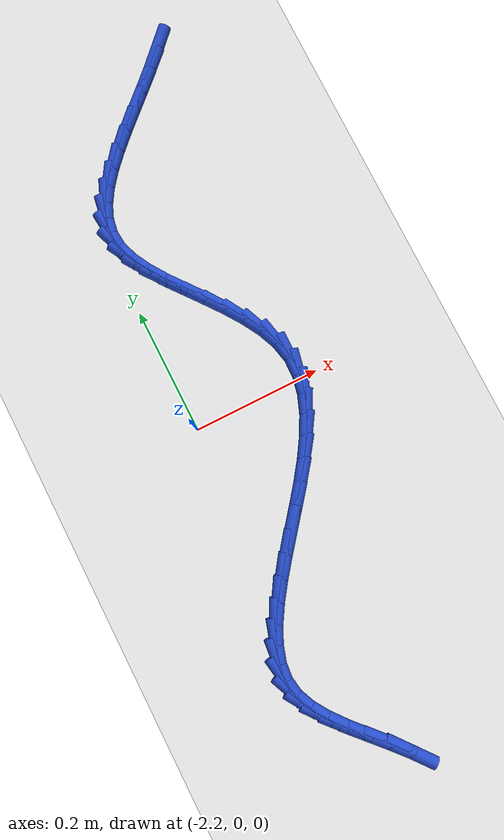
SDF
<sdf version="1.6">
 <world name="default">
  <model name="ground_plane">
   <static>1</static>
   <link name="link">
    <collision name="collision">
     <geometry><plane><normal>0 0 1</normal><size>100 100</size></plane></geometry>
     <surface><friction><ode><mu>100</mu><mu2>50</mu2></ode></friction></surface>
    </collision>
    <visual name="visual">
     <cast_shadows>0</cast_shadows>
     <geometry><plane><normal>0 0 1</normal><size>100 100</size></plane></geometry>
     <material>
      <script><uri>file://media/materials/scripts/gazebo.material</uri><name>Gazebo/WhiteGlow</name></script>
     </material>
    </visual>
   </link>
  </model>
  <model name="line">
   <link name="link_109">
    <pose>-1.9909394929007949 0.5653496473522089 0.01 0 1.57 0.7922528566167634</pose>
    <collision name="collision">
     <geometry><cylinder><radius>0.01</radius><length>0.08</length></cylinder></geometry>
    </collision>
    <visual name="visual">
     <material>
      <script><name>Gazebo/Blue</name><uri>file://media/materials/scripts/gazebo.material</uri></script>
     </material>
     <geometry><cylinder><radius>0.01</radius><length>0.08</length></cylinder></geometry>
    </visual>
   </link>
   <link name="link_110">
    <pose>-2.016343457486458 0.5395950006884088 0.01 0 1.57 0.7614162719492371</pose>
    <collision name="collision">
     <geometry><cylinder><radius>0.01</radius><length>0.08</length></cylinder></geometry>
    </collision>
    <visual name="visual">
     <material>
      <script><name>Gazebo/Blue</name><uri>file://media/materials/scripts/gazebo.material</uri></script>
     </material>
     <geometry><cylinder><radius>0.01</radius><length>0.08</length></cylinder></geometry>
    </visual>
   </link>
   <link name="link_111">
    <pose>-2.0424245737919593 0.5147357646395057 0.01 0 1.57 0.7480867261845477</pose>
    <collision name="collision">
     <geometry><cylinder><radius>0.01</radius><length>0.08</length></cylinder></geometry>
    </collision>
    <visual name="visual">
     <material>
      <script><name>Gazebo/Blue</name><uri>file://media/materials/scripts/gazebo.material</uri></script>
     </material>
     <geometry><cylinder><radius>0.01</radius><length>0.08</length></cylinder></geometry>
    </visual>
   </link>
   <link name="link_112">
    <pose>-2.068421527474488 0.4906098360571725 0.01 0 1.57 0.7526265500591633</pose>
    <collision name="collision">
     <geometry><cylinder><radius>0.01</radius><length>0.08</length></cylinder></geometry>
    </collision>
    <visual name="visual">
     <material>
      <script><name>Gazebo/Blue</name><uri>file://media/materials/scripts/gazebo.material</uri></script>
     </material>
     <geometry><cylinder><radius>0.01</radius><length>0.08</length></cylinder></geometry>
    </visual>
   </link>
   <link name="link_113">
    <pose>-2.093573004191239 0.4670551117930837 0.01 0 1.57 0.7768513662166322</pose>
    <collision name="collision">
     <geometry><cylinder><radius>0.01</radius><length>0.08</length></cylinder></geometry>
    </collision>
    <visual name="visual">
     <material>
      <script><name>Gazebo/Blue</name><uri>file://media/materials/scripts/gazebo.material</uri></script>
     </material>
     <geometry><cylinder><radius>0.01</radius><length>0.08</length></cylinder></geometry>
    </visual>
   </link>
   <link name="link_114">
    <pose>-2.1171176895994033 0.44390948869891295 0.01 0 1.57 0.8244489150094697</pose>
    <collision name="collision">
     <geometry><cylinder><radius>0.01</radius><length>0.08</length></cylinder></geometry>
    </collision>
    <visual name="visual">
     <material>
      <script><name>Gazebo/Blue</name><uri>file://media/materials/scripts/gazebo.material</uri></script>
     </material>
     <geometry><cylinder><radius>0.01</radius><length>0.08</length></cylinder></geometry>
    </visual>
   </link>
   <link name="link_115">
    <pose>-2.138294269356173 0.42101086362633405 0.01 0 1.57 0.9015269116944556</pose>
    <collision name="collision">
     <geometry><cylinder><radius>0.01</radius><length>0.08</length></cylinder></geometry>
    </collision>
    <visual name="visual">
     <material>
      <script><name>Gazebo/Blue</name><uri>file://media/materials/scripts/gazebo.material</uri></script>
     </material>
     <geometry><cylinder><radius>0.01</radius><length>0.08</length></cylinder></geometry>
    </visual>
   </link>
   <link name="link_116">
    <pose>-2.1563414291187404 0.3981971334270214 0.01 0 1.57 1.0169360201142332</pose>
    <collision name="collision">
     <geometry><cylinder><radius>0.01</radius><length>0.08</length></cylinder></geometry>
    </collision>
    <visual name="visual">
     <material>
      <script><name>Gazebo/Blue</name><uri>file://media/materials/scripts/gazebo.material</uri></script>
     </material>
     <geometry><cylinder><radius>0.01</radius><length>0.08</length></cylinder></geometry>
    </visual>
   </link>
   <link name="link_117">
    <pose>-2.1704978545442972 0.3753061949526487 0.01 0 1.57 1.180923047749896</pose>
    <collision name="collision">
     <geometry><cylinder><radius>0.01</radius><length>0.08</length></cylinder></geometry>
    </collision>
    <visual name="visual">
     <material>
      <script><name>Gazebo/Blue</name><uri>file://media/materials/scripts/gazebo.material</uri></script>
     </material>
     <geometry><cylinder><radius>0.01</radius><length>0.08</length></cylinder></geometry>
    </visual>
   </link>
   <link name="link_118">
    <pose>-2.1800022312900356 0.3521759450548894 0.01 0 1.57 1.398665309087676</pose>
    <collision name="collision">
     <geometry><cylinder><radius>0.01</radius><length>0.08</length></cylinder></geometry>
    </collision>
    <visual name="visual">
     <material>
      <script><name>Gazebo/Blue</name><uri>file://media/materials/scripts/gazebo.material</uri></script>
     </material>
     <geometry><cylinder><radius>0.01</radius><length>0.08</length></cylinder></geometry>
    </visual>
   </link>
   <link name="link_119">
    <pose>-2.184093245013148 0.3286442805854182 0.01 0 1.57 -1.484602197525013</pose>
    <collision name="collision">
     <geometry><cylinder><radius>0.01</radius><length>0.08</length></cylinder></geometry>
    </collision>
    <visual name="visual">
     <material>
      <script><name>Gazebo/Blue</name><uri>file://media/materials/scripts/gazebo.material</uri></script>
     </material>
     <geometry><cylinder><radius>0.01</radius><length>0.08</length></cylinder></geometry>
    </visual>
   </link>
   <link name="link_120">
    <pose>-2.182011237393987 0.3045492634498365 0.01 0 1.57 -1.2417170835180595</pose>
    <collision name="collision">
     <geometry><cylinder><radius>0.01</radius><length>0.08</length></cylinder></geometry>
    </collision>
    <visual name="visual">
     <material>
      <script><name>Gazebo/Blue</name><uri>file://media/materials/scripts/gazebo.material</uri></script>
     </material>
     <geometry><cylinder><radius>0.01</radius><length>0.08</length></cylinder></geometry>
    </visual>
   </link>
   <link name="link_121">
    <pose>-2.1735541708751853 0.2797845329751328 0.01 0 1.57 -1.0771766466892587</pose>
    <collision name="collision">
     <geometry><cylinder><radius>0.01</radius><length>0.08</length></cylinder></geometry>
    </collision>
    <visual name="visual">
     <material>
      <script><name>Gazebo/Blue</name><uri>file://media/materials/scripts/gazebo.material</uri></script>
     </material>
     <geometry><cylinder><radius>0.01</radius><length>0.08</length></cylinder></geometry>
    </visual>
   </link>
   <link name="link_122">
    <pose>-2.1598852391244616 0.25437979951760387 0.01 0 1.57 -0.977941074474532</pose>
    <collision name="collision">
     <geometry><cylinder><radius>0.01</radius><length>0.08</length></cylinder></geometry>
    </collision>
    <visual name="visual">
     <material>
      <script><name>Gazebo/Blue</name><uri>file://media/materials/scripts/gazebo.material</uri></script>
     </material>
     <geometry><cylinder><radius>0.01</radius><length>0.08</length></cylinder></geometry>
    </visual>
   </link>
   <link name="link_123">
    <pose>-2.1423727163872313 0.22838521357935115 0.01 0 1.57 -0.925197131033677</pose>
    <collision name="collision">
     <geometry><cylinder><radius>0.01</radius><length>0.08</length></cylinder></geometry>
    </collision>
    <visual name="visual">
     <material>
      <script><name>Gazebo/Blue</name><uri>file://media/materials/scripts/gazebo.material</uri></script>
     </material>
     <geometry><cylinder><radius>0.01</radius><length>0.08</length></cylinder></geometry>
    </visual>
   </link>
   <link name="link_124">
    <pose>-2.1223848769089106 0.2018509256624773 0.01 0 1.57 -0.9079954227318501</pose>
    <collision name="collision">
     <geometry><cylinder><radius>0.01</radius><length>0.08</length></cylinder></geometry>
    </collision>
    <visual name="visual">
     <material>
      <script><name>Gazebo/Blue</name><uri>file://media/materials/scripts/gazebo.material</uri></script>
     </material>
     <geometry><cylinder><radius>0.01</radius><length>0.08</length></cylinder></geometry>
    </visual>
   </link>
   <link name="link_125">
    <pose>-2.101289994934917 0.1748270862690839 0.01 0 1.57 -0.921813066096842</pose>
    <collision name="collision">
     <geometry><cylinder><radius>0.01</radius><length>0.08</length></cylinder></geometry>
    </collision>
    <visual name="visual">
     <material>
      <script><name>Gazebo/Blue</name><uri>file://media/materials/scripts/gazebo.material</uri></script>
     </material>
     <geometry><cylinder><radius>0.01</radius><length>0.08</length></cylinder></geometry>
    </visual>
   </link>
   <link name="link_126">
    <pose>-2.0804563447106643 0.1473638459012723 0.01 0 1.57 -0.9671557646690695</pose>
    <collision name="collision">
     <geometry><cylinder><radius>0.01</radius><length>0.08</length></cylinder></geometry>
    </collision>
    <visual name="visual">
     <material>
      <script><name>Gazebo/Blue</name><uri>file://media/materials/scripts/gazebo.material</uri></script>
     </material>
     <geometry><cylinder><radius>0.01</radius><length>0.08</length></cylinder></geometry>
    </visual>
   </link>
   <link name="link_127">
    <pose>-2.06125220048157 0.11951135506114521 0.01 0 1.57 -1.049063372015708</pose>
    <collision name="collision">
     <geometry><cylinder><radius>0.01</radius><length>0.08</length></cylinder></geometry>
    </collision>
    <visual name="visual">
     <material>
      <script><name>Gazebo/Blue</name><uri>file://media/materials/scripts/gazebo.material</uri></script>
     </material>
     <geometry><cylinder><radius>0.01</radius><length>0.08</length></cylinder></geometry>
    </visual>
   </link>
   <link name="link_128">
    <pose>-2.04504583649305 0.09131976425080417 0.01 0 1.57 -1.1768007500563307</pose>
    <collision name="collision">
     <geometry><cylinder><radius>0.01</radius><length>0.08</length></cylinder></geometry>
    </collision>
    <visual name="visual">
     <material>
      <script><name>Gazebo/Blue</name><uri>file://media/materials/scripts/gazebo.material</uri></script>
     </material>
     <geometry><cylinder><radius>0.01</radius><length>0.08</length></cylinder></geometry>
    </visual>
   </link>
   <link name="link_129">
    <pose>-2.03320552699052 0.0628392239723509 0.01 0 1.57 -1.3612449548500862</pose>
    <collision name="collision">
     <geometry><cylinder><radius>0.01</radius><length>0.08</length></cylinder></geometry>
    </collision>
    <visual name="visual">
     <material>
      <script><name>Gazebo/Blue</name><uri>file://media/materials/scripts/gazebo.material</uri></script>
     </material>
     <geometry><cylinder><radius>0.01</radius><length>0.08</length></cylinder></geometry>
    </visual>
   </link>
   <link name="link_130">
    <pose>-2.0270976872509836 0.03411989452586436 0.01 0 1.57 1.557016087091048</pose>
    <collision name="collision">
     <geometry><cylinder><radius>0.01</radius><length>0.08</length></cylinder></geometry>
    </collision>
    <visual name="visual">
     <material>
      <script><name>Gazebo/Blue</name><uri>file://media/materials/scripts/gazebo.material</uri></script>
     </material>
     <geometry><cylinder><radius>0.01</radius><length>0.08</length></cylinder></geometry>
    </visual>
   </link>
   <link name="link_131">
    <pose>-2.027496028011892 0.0052150601512527045 0.01 0 1.57 1.3590095523675543</pose>
    <collision name="collision">
     <geometry><cylinder><radius>0.01</radius><length>0.08</length></cylinder></geometry>
    </collision>
    <visual name="visual">
     <material>
      <script><name>Gazebo/Blue</name><uri>file://media/materials/scripts/gazebo.material</uri></script>
     </material>
     <geometry><cylinder><radius>0.01</radius><length>0.08</length></cylinder></geometry>
    </visual>
   </link>
   <link name="link_132">
    <pose>-2.0337376893171983 -0.023814423246256367 0.01 0 1.57 1.2030407065681186</pose>
    <collision name="collision">
     <geometry><cylinder><radius>0.01</radius><length>0.08</length></cylinder></geometry>
    </collision>
    <visual name="visual">
     <material>
      <script><name>Gazebo/Blue</name><uri>file://media/materials/scripts/gazebo.material</uri></script>
     </material>
     <geometry><cylinder><radius>0.01</radius><length>0.08</length></cylinder></geometry>
    </visual>
   </link>
   <link name="link_133">
    <pose>-2.0449464119857534 -0.05290657500821685 0.01 0 1.57 1.0866548050038034</pose>
    <collision name="collision">
     <geometry><cylinder><radius>0.01</radius><length>0.08</length></cylinder></geometry>
    </collision>
    <visual name="visual">
     <material>
      <script><name>Gazebo/Blue</name><uri>file://media/materials/scripts/gazebo.material</uri></script>
     </material>
     <geometry><cylinder><radius>0.01</radius><length>0.08</length></cylinder></geometry>
    </visual>
   </link>
   <link name="link_134">
    <pose>-2.060245936836409 -0.08199941447618031 0.01 0 1.57 1.0031005762805272</pose>
    <collision name="collision">
     <geometry><cylinder><radius>0.01</radius><length>0.08</length></cylinder></geometry>
    </collision>
    <visual name="visual">
     <material>
      <script><name>Gazebo/Blue</name><uri>file://media/materials/scripts/gazebo.material</uri></script>
     </material>
     <geometry><cylinder><radius>0.01</radius><length>0.08</length></cylinder></geometry>
    </visual>
   </link>
   <link name="link_135">
    <pose>-2.0787600046880175 -0.11103096099170079 0.01 0 1.57 0.9458991059768695</pose>
    <collision name="collision">
     <geometry><cylinder><radius>0.01</radius><length>0.08</length></cylinder></geometry>
    </collision>
    <visual name="visual">
     <material>
      <script><name>Gazebo/Blue</name><uri>file://media/materials/scripts/gazebo.material</uri></script>
     </material>
     <geometry><cylinder><radius>0.01</radius><length>0.08</length></cylinder></geometry>
    </visual>
   </link>
   <link name="link_136">
    <pose>-2.0996123563594287 -0.1399392338963314 0.01 0 1.57 0.9103119697902358</pose>
    <collision name="collision">
     <geometry><cylinder><radius>0.01</radius><length>0.08</length></cylinder></geometry>
    </collision>
    <visual name="visual">
     <material>
      <script><name>Gazebo/Blue</name><uri>file://media/materials/scripts/gazebo.material</uri></script>
     </material>
     <geometry><cylinder><radius>0.01</radius><length>0.08</length></cylinder></geometry>
    </visual>
   </link>
   <link name="link_137">
    <pose>-2.1219267326694955 -0.16866225253162542 0.01 0 1.57 0.89350143114672</pose>
    <collision name="collision">
     <geometry><cylinder><radius>0.01</radius><length>0.08</length></cylinder></geometry>
    </collision>
    <visual name="visual">
     <material>
      <script><name>Gazebo/Blue</name><uri>file://media/materials/scripts/gazebo.material</uri></script>
     </material>
     <geometry><cylinder><radius>0.01</radius><length>0.08</length></cylinder></geometry>
    </visual>
   </link>
   <link name="link_138">
    <pose>-2.144826874437068 -0.19713803623913595 0.01 0 1.57 0.8944037867815364</pose>
    <collision name="collision">
     <geometry><cylinder><radius>0.01</radius><length>0.08</length></cylinder></geometry>
    </collision>
    <visual name="visual">
     <material>
      <script><name>Gazebo/Blue</name><uri>file://media/materials/scripts/gazebo.material</uri></script>
     </material>
     <geometry><cylinder><radius>0.01</radius><length>0.08</length></cylinder></geometry>
    </visual>
   </link>
   <link name="link_139">
    <pose>-2.1674365224809997 -0.22530460436041633 0.01 0 1.57 0.9137044499398757</pose>
    <collision name="collision">
     <geometry><cylinder><radius>0.01</radius><length>0.08</length></cylinder></geometry>
    </collision>
    <visual name="visual">
     <material>
      <script><name>Gazebo/Blue</name><uri>file://media/materials/scripts/gazebo.material</uri></script>
     </material>
     <geometry><cylinder><radius>0.01</radius><length>0.08</length></cylinder></geometry>
    </visual>
   </link>
   <link name="link_140">
    <pose>-2.188879417620141 -0.2530999762370204 0.01 0 1.57 0.9540534868652905</pose>
    <collision name="collision">
     <geometry><cylinder><radius>0.01</radius><length>0.08</length></cylinder></geometry>
    </collision>
    <visual name="visual">
     <material>
      <script><name>Gazebo/Blue</name><uri>file://media/materials/scripts/gazebo.material</uri></script>
     </material>
     <geometry><cylinder><radius>0.01</radius><length>0.08</length></cylinder></geometry>
    </visual>
   </link>
   <link name="link_141">
    <pose>-2.208279300673343 -0.2804621712104999 0.01 0 1.57 1.0205720700404424</pose>
    <collision name="collision">
     <geometry><cylinder><radius>0.01</radius><length>0.08</length></cylinder></geometry>
    </collision>
    <visual name="visual">
     <material>
      <script><name>Gazebo/Blue</name><uri>file://media/materials/scripts/gazebo.material</uri></script>
     </material>
     <geometry><cylinder><radius>0.01</radius><length>0.08</length></cylinder></geometry>
    </visual>
   </link>
   <link name="link_142">
    <pose>-2.224759912459456 -0.30732920862240853 0.01 0 1.57 1.1215377138980636</pose>
    <collision name="collision">
     <geometry><cylinder><radius>0.01</radius><length>0.08</length></cylinder></geometry>
    </collision>
    <visual name="visual">
     <material>
      <script><name>Gazebo/Blue</name><uri>file://media/materials/scripts/gazebo.material</uri></script>
     </material>
     <geometry><cylinder><radius>0.01</radius><length>0.08</length></cylinder></geometry>
    </visual>
   </link>
   <link name="link_143">
    <pose>-2.237444993797334 -0.33363910781429984 0.01 0 1.57 1.2684462047694174</pose>
    <collision name="collision">
     <geometry><cylinder><radius>0.01</radius><length>0.08</length></cylinder></geometry>
    </collision>
    <visual name="visual">
     <material>
      <script><name>Gazebo/Blue</name><uri>file://media/materials/scripts/gazebo.material</uri></script>
     </material>
     <geometry><cylinder><radius>0.01</radius><length>0.08</length></cylinder></geometry>
    </visual>
   </link>
   <link name="link_144">
    <pose>-2.245458285505827 -0.3593298881277269 0.01 0 1.57 1.4725421843526778</pose>
    <collision name="collision">
     <geometry><cylinder><radius>0.01</radius><length>0.08</length></cylinder></geometry>
    </collision>
    <visual name="visual">
     <material>
      <script><name>Gazebo/Blue</name><uri>file://media/materials/scripts/gazebo.material</uri></script>
     </material>
     <geometry><cylinder><radius>0.01</radius><length>0.08</length></cylinder></geometry>
    </visual>
   </link>
   <link name="link_145">
    <pose>-2.2479235284037875 -0.3843395689042429 0.01 0 1.57 -1.410875612785548</pose>
    <collision name="collision">
     <geometry><cylinder><radius>0.01</radius><length>0.08</length></cylinder></geometry>
    </collision>
    <visual name="visual">
     <material>
      <script><name>Gazebo/Blue</name><uri>file://media/materials/scripts/gazebo.material</uri></script>
     </material>
     <geometry><cylinder><radius>0.01</radius><length>0.08</length></cylinder></geometry>
    </visual>
   </link>
   <link name="link_146">
    <pose>-2.2440080940712543 -0.4086140896059775 0.01 0 1.57 -1.1668902808059944</pose>
    <collision name="collision">
     <geometry><cylinder><radius>0.01</radius><length>0.08</length></cylinder></geometry>
    </collision>
    <visual name="visual">
     <material>
      <script><name>Gazebo/Blue</name><uri>file://media/materials/scripts/gazebo.material</uri></script>
     </material>
     <geometry><cylinder><radius>0.01</radius><length>0.08</length></cylinder></geometry>
    </visual>
   </link>
   <link name="link_147">
    <pose>-2.2338918052249723 -0.4322831759702023 0.01 0 1.57 -0.9967059337495241</pose>
    <collision name="collision">
     <geometry><cylinder><radius>0.01</radius><length>0.08</length></cylinder></geometry>
    </collision>
    <visual name="visual">
     <material>
      <script><name>Gazebo/Blue</name><uri>file://media/materials/scripts/gazebo.material</uri></script>
     </material>
     <geometry><cylinder><radius>0.01</radius><length>0.08</length></cylinder></geometry>
    </visual>
   </link>
   <link name="link_148">
    <pose>-2.2187719294693067 -0.45566124650530615 0.01 0 1.57 -0.8920593906687913</pose>
    <collision name="collision">
     <geometry><cylinder><radius>0.01</radius><length>0.08</length></cylinder></geometry>
    </collision>
    <visual name="visual">
     <material>
      <script><name>Gazebo/Blue</name><uri>file://media/materials/scripts/gazebo.material</uri></script>
     </material>
     <geometry><cylinder><radius>0.01</radius><length>0.08</length></cylinder></geometry>
    </visual>
   </link>
   <link name="link_149">
    <pose>-2.199890363927577 -0.4790708211408261 0.01 0 1.57 -0.8376530561816663</pose>
    <collision name="collision">
     <geometry><cylinder><radius>0.01</radius><length>0.08</length></cylinder></geometry>
    </collision>
    <visual name="visual">
     <material>
      <script><name>Gazebo/Blue</name><uri>file://media/materials/scripts/gazebo.material</uri></script>
     </material>
     <geometry><cylinder><radius>0.01</radius><length>0.08</length></cylinder></geometry>
    </visual>
   </link>
   <link name="link_150">
    <pose>-2.1784890057231023 -0.5028344198062971 0.01 0 1.57 -0.8227515669791304</pose>
    <collision name="collision">
     <geometry><cylinder><radius>0.01</radius><length>0.08</length></cylinder></geometry>
    </collision>
    <visual name="visual">
     <material>
      <script><name>Gazebo/Blue</name><uri>file://media/materials/scripts/gazebo.material</uri></script>
     </material>
     <geometry><cylinder><radius>0.01</radius><length>0.08</length></cylinder></geometry>
    </visual>
   </link>
   <link name="link_151">
    <pose>-2.1558097519792017 -0.527274562431256 0.01 0 1.57 -0.8419049666938446</pose>
    <collision name="collision">
     <geometry><cylinder><radius>0.01</radius><length>0.08</length></cylinder></geometry>
    </collision>
    <visual name="visual">
     <material>
      <script><name>Gazebo/Blue</name><uri>file://media/materials/scripts/gazebo.material</uri></script>
     </material>
     <geometry><cylinder><radius>0.01</radius><length>0.08</length></cylinder></geometry>
    </visual>
   </link>
   <link name="link_152">
    <pose>-2.1330944998191956 -0.5527137689452393 0.01 0 1.57 -0.8937646189012962</pose>
    <collision name="collision">
     <geometry><cylinder><radius>0.01</radius><length>0.08</length></cylinder></geometry>
    </collision>
    <visual name="visual">
     <material>
      <script><name>Gazebo/Blue</name><uri>file://media/materials/scripts/gazebo.material</uri></script>
     </material>
     <geometry><cylinder><radius>0.01</radius><length>0.08</length></cylinder></geometry>
    </visual>
   </link>
  </model>
 </world>
</sdf>
